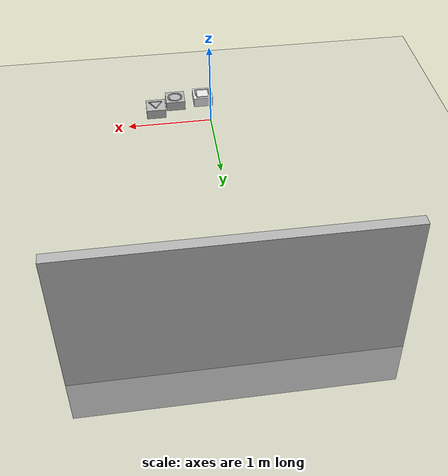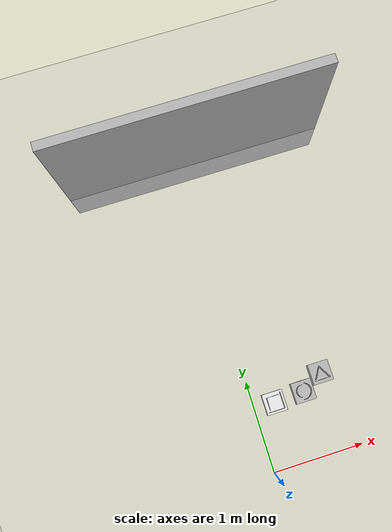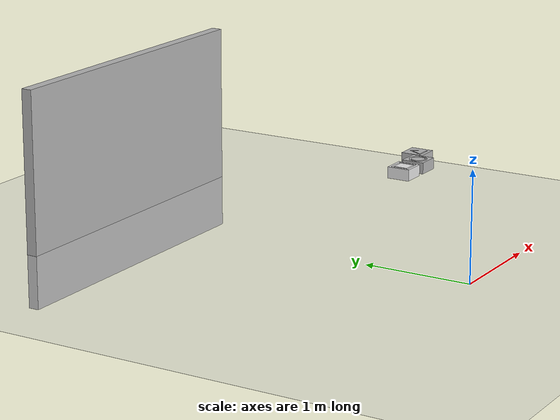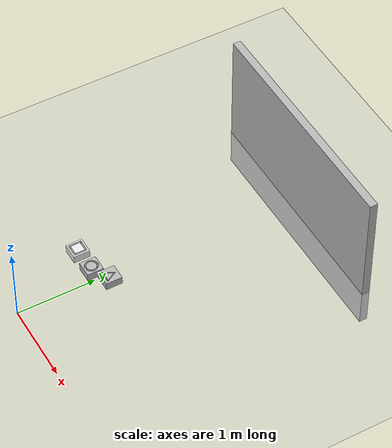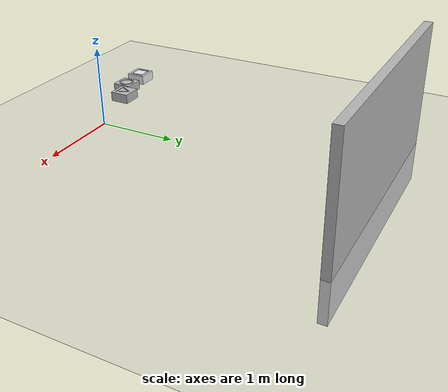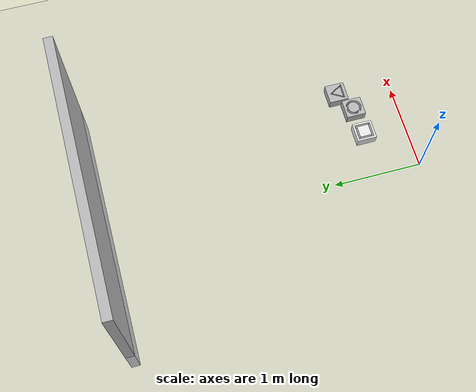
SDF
<sdf version="1.6">
 <world name="default">
  <light name="sun" type="directional">
   <pose>0 0 10 0 -0 0</pose>
   <diffuse>0.8 0.8 0.8 1</diffuse>
   <specular>0.2 0.2 0.2 1</specular>
   <attenuation>
    <range>1000</range>
    <constant>0.9</constant>
    <linear>0.01</linear>
    <quadratic>0.001</quadratic>
   </attenuation>
   <direction>-0.5 0.1 -0.9</direction>
  </light>
  <model name="ground_plane">
   <static>1</static>
   <link name="link">
    <collision name="collision">
     <geometry><plane><normal>0 0 1</normal><size>100 100</size></plane></geometry>
     <surface>
      <contact><collide_bitmask>65535</collide_bitmask></contact>
      <friction><ode><mu>100</mu><mu2>50</mu2></ode></friction>
     </surface>
    </collision>
    <visual name="visual">
     <cast_shadows>0</cast_shadows>
     <geometry><plane><normal>0 0 1</normal><size>100 100</size></plane></geometry>
     <material>
      <script><uri>file://media/materials/scripts/gazebo.material</uri><name>Gazebo/Grey</name></script>
     </material>
    </visual>
   </link>
  </model>
  <gravity>0 0 -9.8</gravity>
  <magnetic_field>6e-06 2.3e-05 -4.2e-05</magnetic_field>
  <atmosphere type="adiabatic"/>
  <physics name="default_physics" default="0" type="ode">
   <max_step_size>0.001</max_step_size>
   <real_time_factor>1</real_time_factor>
   <real_time_update_rate>1000</real_time_update_rate>
  </physics>
  <scene><ambient>1 1 1 0.4</ambient><background>0.7 0.7 0.7 1</background><shadows>1</shadows></scene>
  <audio><device>default</device></audio>
  <spherical_coordinates>
   <surface_model>EARTH_WGS84</surface_model>
   <latitude_deg>0</latitude_deg>
   <longitude_deg>0</longitude_deg>
   <elevation>0</elevation>
   <heading_deg>0</heading_deg>
  </spherical_coordinates>
  <light name="user_directional_light_0" type="directional">
   <pose>-0.856808 7.35485 1 0 -0 0</pose>
   <diffuse>0.5 0.5 0.5 1</diffuse>
   <specular>0.1 0.1 0.1 1</specular>
   <direction>0.1 0.1 -0.9</direction>
   <attenuation>
    <range>20</range>
    <constant>0.5</constant>
    <linear>0.01</linear>
    <quadratic>0.001</quadratic>
   </attenuation>
  </light>
  <model name="big_circle_path">
   <pose>0.336727 0.752905 0.780157 0 -0 0</pose>
   <static>1</static>
   <link name="link">
    <inertial>
     <mass>1</mass>
     <inertia><ixx>0.083</ixx><ixy>0</ixy><ixz>0</ixz><iyy>0.083</iyy><iyz>0</iyz><izz>0.083</izz></inertia>
    </inertial>
    <collision name="collision">
     <geometry><mesh><uri>model://bigCircle/BigCircle.stl</uri><scale>0.001 0.001 0.001</scale></mesh></geometry>
    </collision>
    <visual name="visual">
     <geometry><mesh><uri>model://bigCircle/BigCircle.stl</uri><scale>0.001 0.001 0.001</scale></mesh></geometry>
    </visual>
   </link>
  </model>
  <model name="big_triangle_path">
   <pose>0.668236 0.873319 0.779137 0 -0 0</pose>
   <static>1</static>
   <link name="link">
    <inertial>
     <mass>1</mass>
     <inertia><ixx>0.083</ixx><ixy>0</ixy><ixz>0</ixz><iyy>0.083</iyy><iyz>0</iyz><izz>0.083</izz></inertia>
    </inertial>
    <collision name="collision">
     <geometry>
      <mesh><uri>model://bigTriangle/BigTriangle.stl</uri><scale>0.001 0.001 0.001</scale></mesh>
     </geometry>
    </collision>
    <visual name="visual">
     <geometry>
      <mesh><uri>model://bigTriangle/BigTriangle.stl</uri><scale>0.001 0.001 0.001</scale></mesh>
     </geometry>
    </visual>
   </link>
  </model>
  <model name="hvlscreen">
   <pose>0.203128 3.63815 0.5 0 -0 0</pose>
   <static>1</static>
   <link name="link">
    <inertial><mass>1</mass></inertial>
    <collision name="collision"><geometry><box><size>3 0.1 2</size></box></geometry></collision>
    <visual name="visual">
     <geometry><box><size>3 0.1 2</size></box></geometry>
     <material>
      <script>
       <uri>model://hvlscreen/materials/scripts</uri>
       <uri>model://hvlscreen/materials/textures</uri>
       <name>hvlscreenMat/Diffuse</name>
      </script>
     </material>
    </visual>
   </link>
  </model>
  <model name="bigsquare">
   <pose>0.155312 0.735911 0.791684 0 -0 0</pose>
   <static>1</static>
   <link name="link">
    <inertial><mass>1</mass></inertial>
    <collision name="collision">
     <geometry><mesh><uri>model://bigSquare/BigSquare.stl</uri><scale>0.001 0.001 0.001</scale></mesh></geometry>
    </collision>
    <visual name="visual">
     <geometry><mesh><uri>model://bigSquare/BigSquare.stl</uri><scale>0.001 0.001 0.001</scale></mesh></geometry>
     <material>
      <script><uri>file://media/materials/scripts/gazebo.material</uri><name>Gazebo/White</name></script>
     </material>
    </visual>
   </link>
  </model>
 </world>
</sdf>
